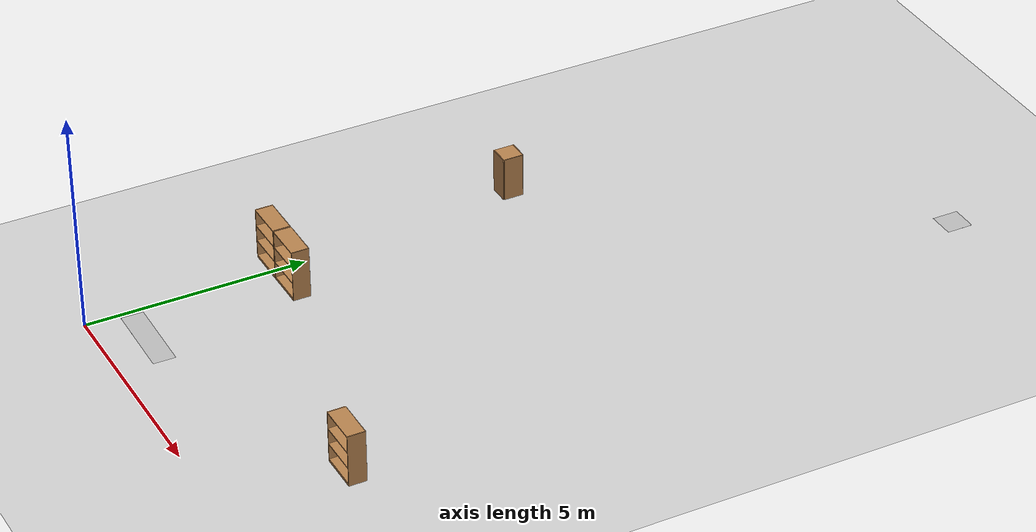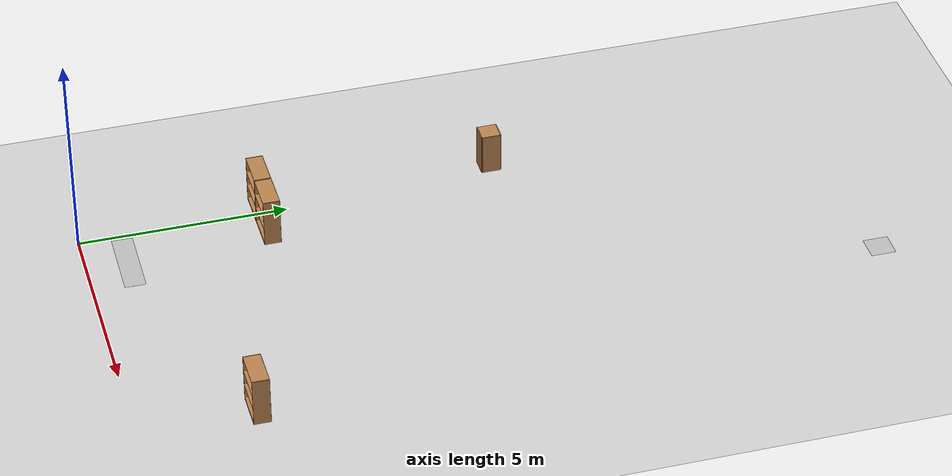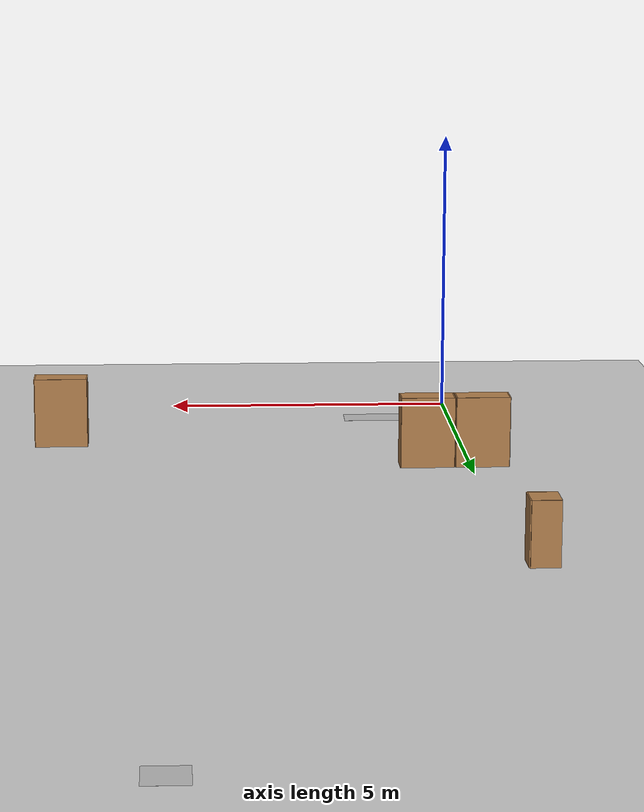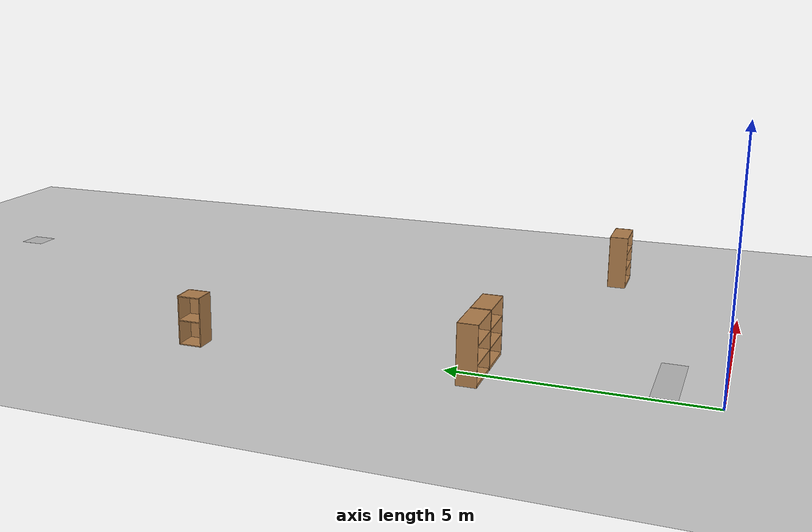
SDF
<sdf version="1.6">
 <world name="default">
  <light name="sun" type="directional">
   <pose>0 0 10 0 -0 0</pose>
   <diffuse>0.8 0.8 0.8 1</diffuse>
   <specular>0.2 0.2 0.2 1</specular>
   <attenuation>
    <range>1000</range>
    <constant>0.9</constant>
    <linear>0.01</linear>
    <quadratic>0.001</quadratic>
   </attenuation>
   <direction>-0.5 0.1 -0.9</direction>
  </light>
  <model name="ground_plane">
   <static>1</static>
   <link name="link">
    <collision name="collision">
     <geometry><plane><normal>0 0 1</normal><size>100 100</size></plane></geometry>
     <surface><friction><ode><mu>100</mu><mu2>50</mu2></ode></friction></surface>
    </collision>
    <visual name="visual">
     <cast_shadows>0</cast_shadows>
     <geometry><plane><normal>0 0 1</normal><size>100 100</size></plane></geometry>
     <material>
      <script><uri>file://media/materials/scripts/gazebo.material</uri><name>Gazebo/Grey</name></script>
     </material>
    </visual>
   </link>
  </model>
  <gravity>0 0 -9.8</gravity>
  <magnetic_field>6e-06 2.3e-05 -4.2e-05</magnetic_field>
  <atmosphere type="adiabatic"/>
  <physics name="default_physics" default="0" type="ode">
   <max_step_size>0.001</max_step_size>
   <real_time_factor>1</real_time_factor>
   <real_time_update_rate>1000</real_time_update_rate>
  </physics>
  <scene><ambient>0.4 0.4 0.4 1</ambient><background>0.7 0.7 0.7 1</background><shadows>1</shadows></scene>
  <audio><device>default</device></audio>
  <spherical_coordinates>
   <surface_model>EARTH_WGS84</surface_model>
   <latitude_deg>0</latitude_deg>
   <longitude_deg>0</longitude_deg>
   <elevation>0</elevation>
   <heading_deg>0</heading_deg>
  </spherical_coordinates>
  <model name="end_plane">
   <static>1</static>
   <link name="link">
    <collision name="collision">
     <geometry><plane><normal>0 0 1</normal><size>0.6 0.6</size></plane></geometry>
     <surface><friction><ode><mu>100</mu><mu2>50</mu2></ode></friction></surface>
    </collision>
    <visual name="visual">
     <cast_shadows>0</cast_shadows>
     <geometry><plane><normal>0 0 1</normal><size>0.6 0.6</size></plane></geometry>
     <material>
      <script>
       <uri>model://end_plane/materials/scripts</uri>
       <uri>model://end_plane/materials/textures/</uri>
       <name>EndPlane/Image</name>
      </script>
     </material>
    </visual>
   </link>
   <pose>5.1 18 0 0 -0 0</pose>
  </model>
  <model name="start_plane">
   <static>1</static>
   <link name="link">
    <collision name="collision">
     <geometry><plane><normal>0 0 1</normal><size>0.5 1.8</size></plane></geometry>
     <surface><friction><ode><mu>100</mu><mu2>50</mu2></ode></friction></surface>
    </collision>
    <visual name="visual">
     <cast_shadows>0</cast_shadows>
     <geometry><plane><normal>0 0 1</normal><size>0.5 1.8</size></plane></geometry>
     <material>
      <script>
       <uri>model://start_plane/materials/scripts</uri>
       <uri>model://start_plane/materials/textures/</uri>
       <name>StartPlane/Image</name>
      </script>
     </material>
    </visual>
   </link>
   <pose>1 1 0 0 0 -1.58541</pose>
  </model>
  <model name="cabinet_0">
   <static>1</static>
   <link name="cabinet_bottom_plate">
    <inertial>
     <pose>0 0 -1 0 -0 0</pose>
     <inertia><ixx>2.05</ixx><ixy>0</ixy><ixz>0</ixz><iyy>2.05</iyy><iyz>0</iyz><izz>2.05</izz></inertia>
     <mass>25</mass>
    </inertial>
    <collision name="cabinet_bottom_plate_geom">
     <pose>0 0 0.01 0 -0 0</pose>
     <geometry><box><size>0.45 0.45 0.02</size></box></geometry>
    </collision>
    <visual name="cabinet_bottom_plate_geom_visual">
     <pose>0 0 0.01 0 -0 0</pose>
     <geometry><box><size>0.45 0.45 0.02</size></box></geometry>
     <material>
      <script><uri>file://media/materials/scripts/gazebo.material</uri><name>Gazebo/Wood</name></script>
     </material>
    </visual>
    <collision name="cabinet_bottom_plate_geom_cabinet_back_plate">
     <pose>0.235 0 0.51 0 -0 0</pose>
     <geometry><box><size>0.02 0.45 1.02</size></box></geometry>
    </collision>
    <visual name="cabinet_bottom_plate_geom_cabinet_back_plate_visual">
     <pose>0.235 0 0.51 0 -0 0</pose>
     <geometry><box><size>0.02 0.45 1.02</size></box></geometry>
     <material>
      <script><uri>file://media/materials/scripts/gazebo.material</uri><name>Gazebo/Wood</name></script>
     </material>
    </visual>
    <collision name="cabinet_bottom_plate_geom_cabinet_left_plate">
     <pose>0 0.235 0.51 0 -0 0</pose>
     <geometry><box><size>0.45 0.02 1.02</size></box></geometry>
    </collision>
    <visual name="cabinet_bottom_plate_geom_cabinet_left_plate_visual">
     <pose>0 0.235 0.51 0 -0 0</pose>
     <geometry><box><size>0.45 0.02 1.02</size></box></geometry>
     <material>
      <script><uri>file://media/materials/scripts/gazebo.material</uri><name>Gazebo/Wood</name></script>
     </material>
    </visual>
    <collision name="cabinet_bottom_plate_geom_cabinet_middle_plate">
     <pose>0 0 0.51 0 -0 0</pose>
     <geometry><box><size>0.45 0.45 0.02</size></box></geometry>
    </collision>
    <visual name="cabinet_bottom_plate_geom_cabinet_middle_plate_visual">
     <pose>0 0 0.51 0 -0 0</pose>
     <geometry><box><size>0.45 0.45 0.02</size></box></geometry>
     <material>
      <script><uri>file://media/materials/scripts/gazebo.material</uri><name>Gazebo/Wood</name></script>
     </material>
    </visual>
    <collision name="cabinet_bottom_plate_geom_cabinet_right_plate">
     <pose>0 -0.235 0.51 0 -0 0</pose>
     <geometry><box><size>0.45 0.02 1.02</size></box></geometry>
    </collision>
    <visual name="cabinet_bottom_plate_geom_cabinet_right_plate_visual">
     <pose>0 -0.235 0.51 0 -0 0</pose>
     <geometry><box><size>0.45 0.02 1.02</size></box></geometry>
     <material>
      <script><uri>file://media/materials/scripts/gazebo.material</uri><name>Gazebo/Wood</name></script>
     </material>
    </visual>
    <collision name="cabinet_bottom_plate_geom_cabinet_top_plate">
     <pose>0 0 1.01 0 -0 0</pose>
     <geometry><box><size>0.45 0.45 0.02</size></box></geometry>
    </collision>
    <visual name="cabinet_bottom_plate_geom_cabinet_top_plate_visual">
     <pose>0 0 1.01 0 -0 0</pose>
     <geometry><box><size>0.45 0.45 0.02</size></box></geometry>
     <material>
      <script><uri>file://media/materials/scripts/gazebo.material</uri><name>Gazebo/Wood</name></script>
     </material>
    </visual>
   </link>
   <pose>-0.397289 10.0675 0 0 -0 0</pose>
  </model>
  <model name="bookshelf">
   <static>1</static>
   <link name="link">
    <inertial><mass>1</mass></inertial>
    <collision name="back">
     <pose>0 0.005 0.6 0 -0 0</pose>
     <geometry><box><size>0.9 0.01 1.2</size></box></geometry>
    </collision>
    <visual name="visual1">
     <pose>0 0.005 0.6 0 -0 0</pose>
     <geometry><box><size>0.9 0.01 1.2</size></box></geometry>
     <material>
      <script><uri>file://media/materials/scripts/gazebo.material</uri><name>Gazebo/Wood</name></script>
     </material>
    </visual>
    <collision name="left_side">
     <pose>0.45 -0.195 0.6 0 -0 0</pose>
     <geometry><box><size>0.02 0.4 1.2</size></box></geometry>
    </collision>
    <visual name="visual2">
     <pose>0.45 -0.195 0.6 0 -0 0</pose>
     <geometry><box><size>0.02 0.4 1.2</size></box></geometry>
     <material>
      <script><uri>file://media/materials/scripts/gazebo.material</uri><name>Gazebo/Wood</name></script>
     </material>
    </visual>
    <collision name="right_side">
     <pose>-0.45 -0.195 0.6 0 -0 0</pose>
     <geometry><box><size>0.02 0.4 1.2</size></box></geometry>
    </collision>
    <visual name="visual3">
     <pose>-0.45 -0.195 0.6 0 -0 0</pose>
     <geometry><box><size>0.02 0.4 1.2</size></box></geometry>
     <material>
      <script><uri>file://media/materials/scripts/gazebo.material</uri><name>Gazebo/Wood</name></script>
     </material>
    </visual>
    <collision name="bottom">
     <pose>0 -0.195 0.03 0 -0 0</pose>
     <geometry><box><size>0.88 0.4 0.06</size></box></geometry>
    </collision>
    <visual name="visual4">
     <pose>0 -0.195 0.03 0 -0 0</pose>
     <geometry><box><size>0.88 0.4 0.06</size></box></geometry>
     <material>
      <script><uri>file://media/materials/scripts/gazebo.material</uri><name>Gazebo/Wood</name></script>
     </material>
    </visual>
    <collision name="top">
     <pose>0 -0.195 1.19 0 -0 0</pose>
     <geometry><box><size>0.88 0.4 0.02</size></box></geometry>
    </collision>
    <visual name="visual5">
     <pose>0 -0.195 1.19 0 -0 0</pose>
     <geometry><box><size>0.88 0.4 0.02</size></box></geometry>
     <material>
      <script><uri>file://media/materials/scripts/gazebo.material</uri><name>Gazebo/Wood</name></script>
     </material>
    </visual>
    <collision name="low_shelf">
     <pose>0 -0.195 0.43 0 -0 0</pose>
     <geometry><box><size>0.88 0.4 0.02</size></box></geometry>
    </collision>
    <visual name="visual6">
     <pose>0 -0.195 0.43 0 -0 0</pose>
     <geometry><box><size>0.88 0.4 0.02</size></box></geometry>
     <material>
      <script><uri>file://media/materials/scripts/gazebo.material</uri><name>Gazebo/Wood</name></script>
     </material>
    </visual>
    <collision name="high_shelf">
     <pose>0 -0.195 0.8 0 -0 0</pose>
     <geometry><box><size>0.88 0.4 0.02</size></box></geometry>
    </collision>
    <visual name="visual7">
     <pose>0 -0.195 0.8 0 -0 0</pose>
     <geometry><box><size>0.88 0.4 0.02</size></box></geometry>
     <material>
      <script><uri>file://media/materials/scripts/gazebo.material</uri><name>Gazebo/Wood</name></script>
     </material>
    </visual>
   </link>
   <pose>-0.188703 4.587 0 0 -0 0</pose>
  </model>
  <model name="bookshelf_0">
   <static>1</static>
   <link name="bookshelf_0::link">
    <inertial><mass>1</mass></inertial>
    <collision name="back">
     <pose>0 0.005 0.6 0 -0 0</pose>
     <geometry><box><size>0.9 0.01 1.2</size></box></geometry>
    </collision>
    <visual name="visual1">
     <pose>0 0.005 0.6 0 -0 0</pose>
     <geometry><box><size>0.9 0.01 1.2</size></box></geometry>
     <material>
      <script><uri>file://media/materials/scripts/gazebo.material</uri><name>Gazebo/Wood</name></script>
     </material>
    </visual>
    <collision name="left_side">
     <pose>0.45 -0.195 0.6 0 -0 0</pose>
     <geometry><box><size>0.02 0.4 1.2</size></box></geometry>
    </collision>
    <visual name="visual2">
     <pose>0.45 -0.195 0.6 0 -0 0</pose>
     <geometry><box><size>0.02 0.4 1.2</size></box></geometry>
     <material>
      <script><uri>file://media/materials/scripts/gazebo.material</uri><name>Gazebo/Wood</name></script>
     </material>
    </visual>
    <collision name="right_side">
     <pose>-0.45 -0.195 0.6 0 -0 0</pose>
     <geometry><box><size>0.02 0.4 1.2</size></box></geometry>
    </collision>
    <visual name="visual3">
     <pose>-0.45 -0.195 0.6 0 -0 0</pose>
     <geometry><box><size>0.02 0.4 1.2</size></box></geometry>
     <material>
      <script><uri>file://media/materials/scripts/gazebo.material</uri><name>Gazebo/Wood</name></script>
     </material>
    </visual>
    <collision name="bottom">
     <pose>0 -0.195 0.03 0 -0 0</pose>
     <geometry><box><size>0.88 0.4 0.06</size></box></geometry>
    </collision>
    <visual name="visual4">
     <pose>0 -0.195 0.03 0 -0 0</pose>
     <geometry><box><size>0.88 0.4 0.06</size></box></geometry>
     <material>
      <script><uri>file://media/materials/scripts/gazebo.material</uri><name>Gazebo/Wood</name></script>
     </material>
    </visual>
    <collision name="top">
     <pose>0 -0.195 1.19 0 -0 0</pose>
     <geometry><box><size>0.88 0.4 0.02</size></box></geometry>
    </collision>
    <visual name="visual5">
     <pose>0 -0.195 1.19 0 -0 0</pose>
     <geometry><box><size>0.88 0.4 0.02</size></box></geometry>
     <material>
      <script><uri>file://media/materials/scripts/gazebo.material</uri><name>Gazebo/Wood</name></script>
     </material>
    </visual>
    <collision name="low_shelf">
     <pose>0 -0.195 0.43 0 -0 0</pose>
     <geometry><box><size>0.88 0.4 0.02</size></box></geometry>
    </collision>
    <visual name="visual6">
     <pose>0 -0.195 0.43 0 -0 0</pose>
     <geometry><box><size>0.88 0.4 0.02</size></box></geometry>
     <material>
      <script><uri>file://media/materials/scripts/gazebo.material</uri><name>Gazebo/Wood</name></script>
     </material>
    </visual>
    <collision name="high_shelf">
     <pose>0 -0.195 0.8 0 -0 0</pose>
     <geometry><box><size>0.88 0.4 0.02</size></box></geometry>
    </collision>
    <visual name="visual7">
     <pose>0 -0.195 0.8 0 -0 0</pose>
     <geometry><box><size>0.88 0.4 0.02</size></box></geometry>
     <material>
      <script><uri>file://media/materials/scripts/gazebo.material</uri><name>Gazebo/Wood</name></script>
     </material>
    </visual>
   </link>
   <pose>0.73818 4.58756 0 0 -0 0</pose>
  </model>
  <model name="bookshelf_1">
   <static>1</static>
   <link name="link">
    <inertial><mass>1</mass></inertial>
    <collision name="back">
     <pose>0 0.005 0.6 0 -0 0</pose>
     <geometry><box><size>0.9 0.01 1.2</size></box></geometry>
    </collision>
    <visual name="visual1">
     <pose>0 0.005 0.6 0 -0 0</pose>
     <geometry><box><size>0.9 0.01 1.2</size></box></geometry>
     <material>
      <script><uri>file://media/materials/scripts/gazebo.material</uri><name>Gazebo/Wood</name></script>
     </material>
    </visual>
    <collision name="left_side">
     <pose>0.45 -0.195 0.6 0 -0 0</pose>
     <geometry><box><size>0.02 0.4 1.2</size></box></geometry>
    </collision>
    <visual name="visual2">
     <pose>0.45 -0.195 0.6 0 -0 0</pose>
     <geometry><box><size>0.02 0.4 1.2</size></box></geometry>
     <material>
      <script><uri>file://media/materials/scripts/gazebo.material</uri><name>Gazebo/Wood</name></script>
     </material>
    </visual>
    <collision name="right_side">
     <pose>-0.45 -0.195 0.6 0 -0 0</pose>
     <geometry><box><size>0.02 0.4 1.2</size></box></geometry>
    </collision>
    <visual name="visual3">
     <pose>-0.45 -0.195 0.6 0 -0 0</pose>
     <geometry><box><size>0.02 0.4 1.2</size></box></geometry>
     <material>
      <script><uri>file://media/materials/scripts/gazebo.material</uri><name>Gazebo/Wood</name></script>
     </material>
    </visual>
    <collision name="bottom">
     <pose>0 -0.195 0.03 0 -0 0</pose>
     <geometry><box><size>0.88 0.4 0.06</size></box></geometry>
    </collision>
    <visual name="visual4">
     <pose>0 -0.195 0.03 0 -0 0</pose>
     <geometry><box><size>0.88 0.4 0.06</size></box></geometry>
     <material>
      <script><uri>file://media/materials/scripts/gazebo.material</uri><name>Gazebo/Wood</name></script>
     </material>
    </visual>
    <collision name="top">
     <pose>0 -0.195 1.19 0 -0 0</pose>
     <geometry><box><size>0.88 0.4 0.02</size></box></geometry>
    </collision>
    <visual name="visual5">
     <pose>0 -0.195 1.19 0 -0 0</pose>
     <geometry><box><size>0.88 0.4 0.02</size></box></geometry>
     <material>
      <script><uri>file://media/materials/scripts/gazebo.material</uri><name>Gazebo/Wood</name></script>
     </material>
    </visual>
    <collision name="low_shelf">
     <pose>0 -0.195 0.43 0 -0 0</pose>
     <geometry><box><size>0.88 0.4 0.02</size></box></geometry>
    </collision>
    <visual name="visual6">
     <pose>0 -0.195 0.43 0 -0 0</pose>
     <geometry><box><size>0.88 0.4 0.02</size></box></geometry>
     <material>
      <script><uri>file://media/materials/scripts/gazebo.material</uri><name>Gazebo/Wood</name></script>
     </material>
    </visual>
    <collision name="high_shelf">
     <pose>0 -0.195 0.8 0 -0 0</pose>
     <geometry><box><size>0.88 0.4 0.02</size></box></geometry>
    </collision>
    <visual name="visual7">
     <pose>0 -0.195 0.8 0 -0 0</pose>
     <geometry><box><size>0.88 0.4 0.02</size></box></geometry>
     <material>
      <script><uri>file://media/materials/scripts/gazebo.material</uri><name>Gazebo/Wood</name></script>
     </material>
    </visual>
   </link>
   <pose>6.94518 2.93784 0 0 -0 0</pose>
  </model>
 </world>
</sdf>
